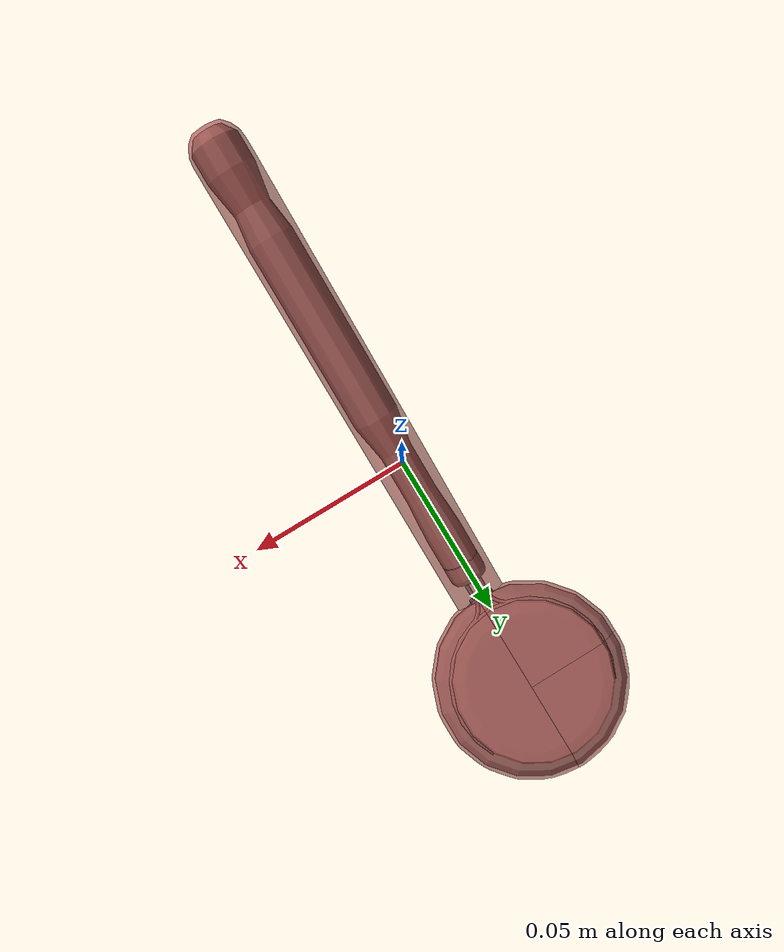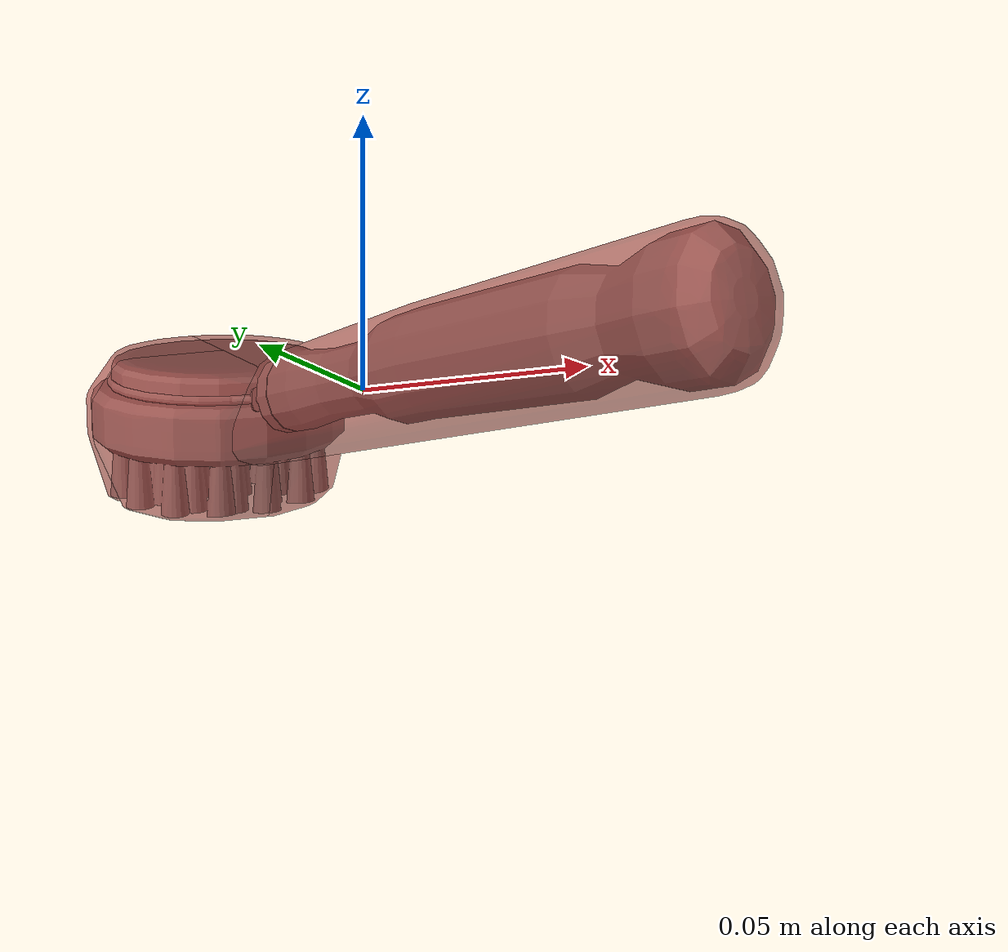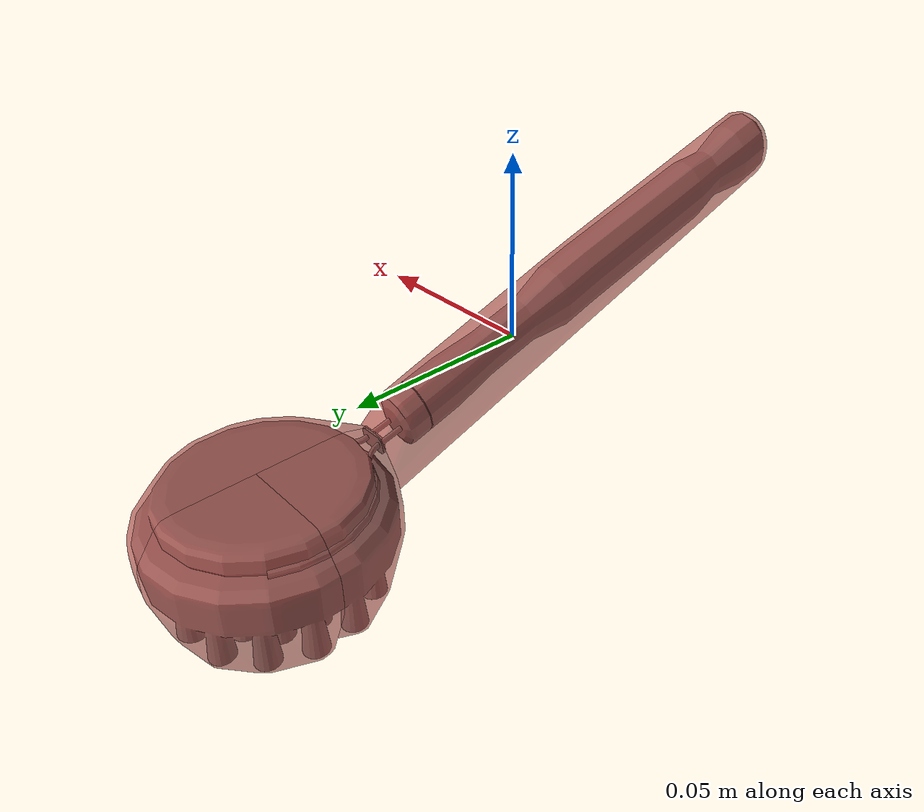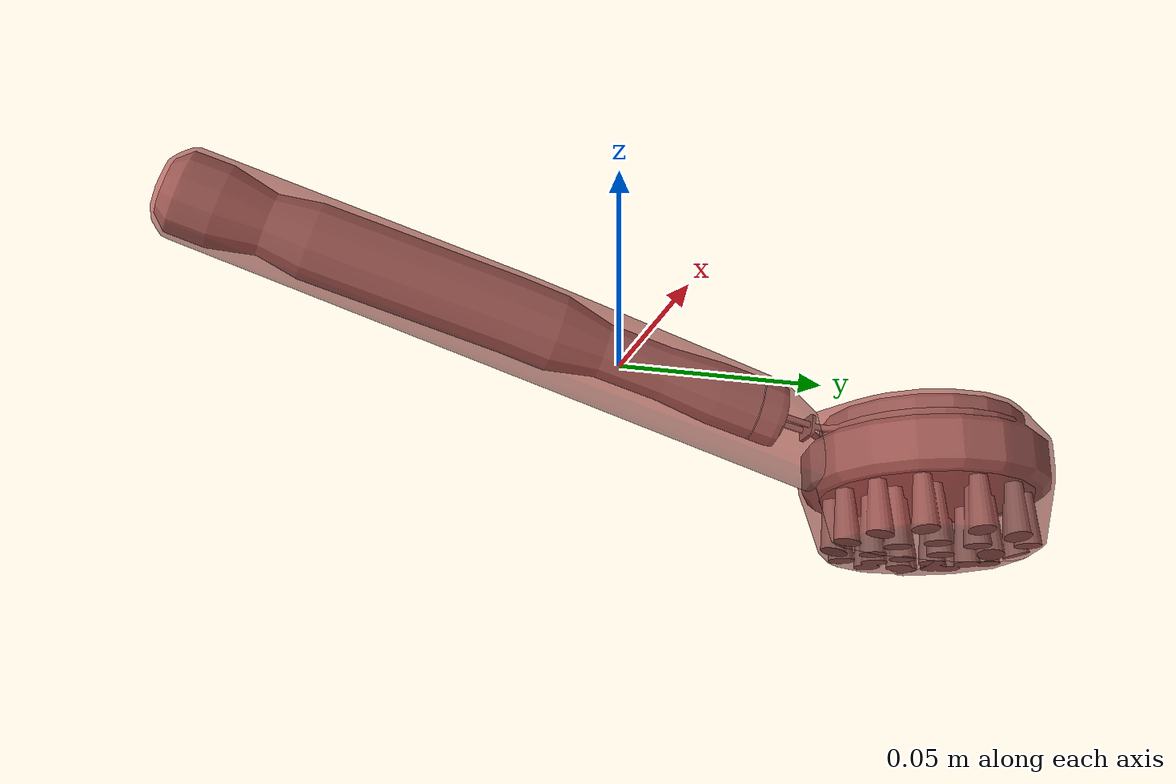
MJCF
<mujoco model="model">
  <option timestep="0.002" gravity="0.0 0.0 -9.81"/>
  <compiler angle="radian"/>
  <asset>
    <mesh file="visual/DishBrush002.obj" name="DishBrush002_vis"/>
    <mesh file="visual/Prop.obj" name="DishBrush002_Prop_vis"/>
    <texture file="visual/T_BC001.png" name="DishBrush002_material" type="2d"/>
    <material name="DishBrush002_material" rgba="1 1 1 1.0" texture="DishBrush002_material" shininess="0.141421377658844" specular="0.5"/>
    <texture file="visual/T_BC001.png" name="DishBrush002_Prop_material" type="2d"/>
    <material name="DishBrush002_Prop_material" rgba="1 1 1 1.0" texture="DishBrush002_Prop_material" shininess="0.1" specular="25"/>
    <mesh file="collision/collision_mesh_collision_0.obj" name="DishBrush002_collision_mesh_0"/>
    <mesh file="collision/collision_mesh_collision_1.obj" name="DishBrush002_collision_mesh_1"/>
    <mesh file="collision/collision_mesh_collision_2.obj" name="DishBrush002_collision_mesh_2"/>
    <mesh file="collision/collision_mesh_collision_3.obj" name="DishBrush002_collision_mesh_3"/>
  </asset>
  <default>
    <default class="visual">
      <geom conaffinity="0" contype="0" group="1" type="mesh"/>
    </default>
    <default class="collision">
      <geom group="0" rgba="0.5 0 0 0.5" density="1.0" solref="0.004 1" solimp="0.998 0.998 0.001"/>
    </default>
    <default class="spawn">
      <geom group="0" rgba="1 1 1 0.5" contype="0" conaffinity="0"/>
      <site group="0" rgba="1 1 1 0.5"/>
    </default>
    <default class="region">
      <geom group="1" conaffinity="0" contype="0" rgba="0 1 0 0" mass="0"/>
    </default>
  </default>
  <worldbody>
    <body>
      <body name="object">
        <geom mesh="DishBrush002_vis" type="mesh" solimp="0.998 0.998 0.001" solref="0.001 1" friction="0.95 0.3 0.1" class="visual" material="DishBrush002_material"/>
        <body name="DishBrush002_Prop">
          <geom mesh="DishBrush002_Prop_vis" type="mesh" solimp="0.998 0.998 0.001" solref="0.001 1" friction="0.95 0.3 0.1" class="visual" material="DishBrush002_Prop_material"/>
        </body>
        <geom class="region" name="reg_bbox" type="box" pos="0.0 6.074500000000094e-05 -0.00036330000000000043" size="0.02991423 0.105939225 0.041236140000000004"/>
        <geom mesh="DishBrush002_collision_mesh_0" type="mesh" class="collision"/>
        <geom mesh="DishBrush002_collision_mesh_1" type="mesh" class="collision"/>
        <geom mesh="DishBrush002_collision_mesh_2" type="mesh" class="collision"/>
        <geom mesh="DishBrush002_collision_mesh_3" type="mesh" class="collision"/>
      </body>
    </body>
  </worldbody>
  <actuator/>
</mujoco>
